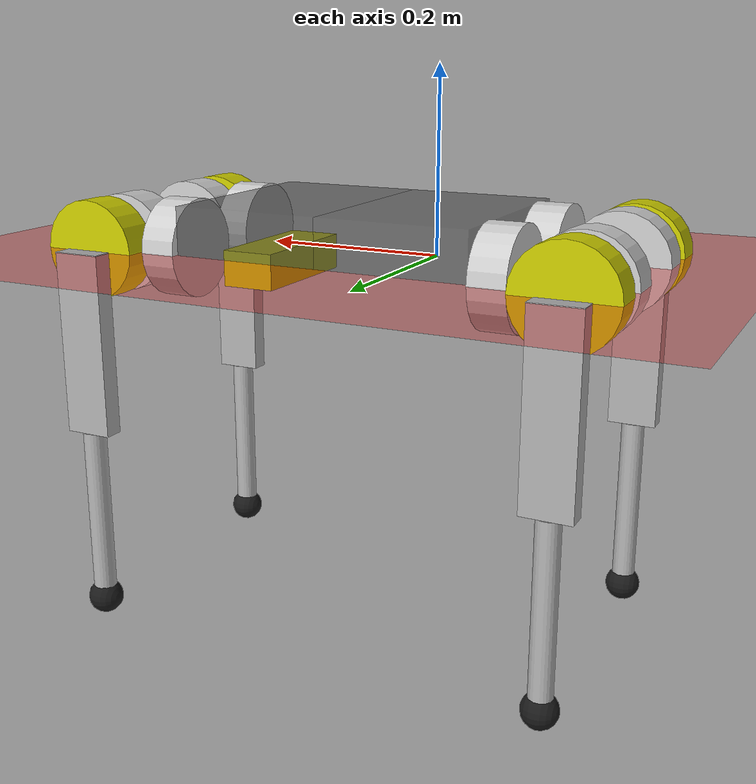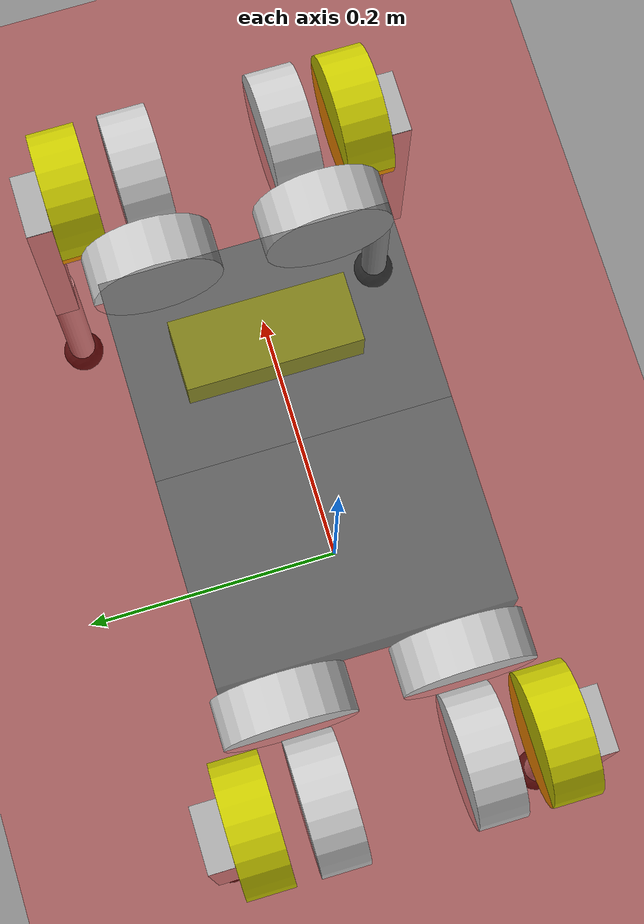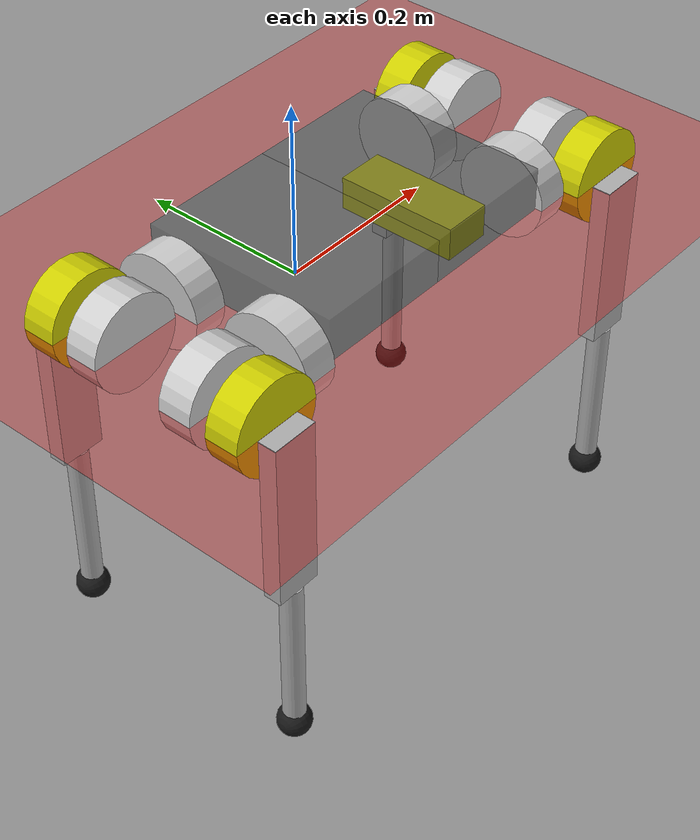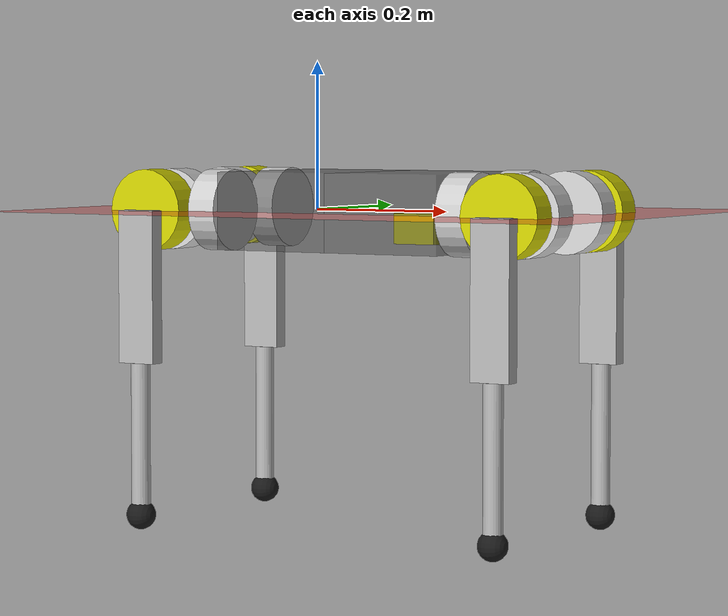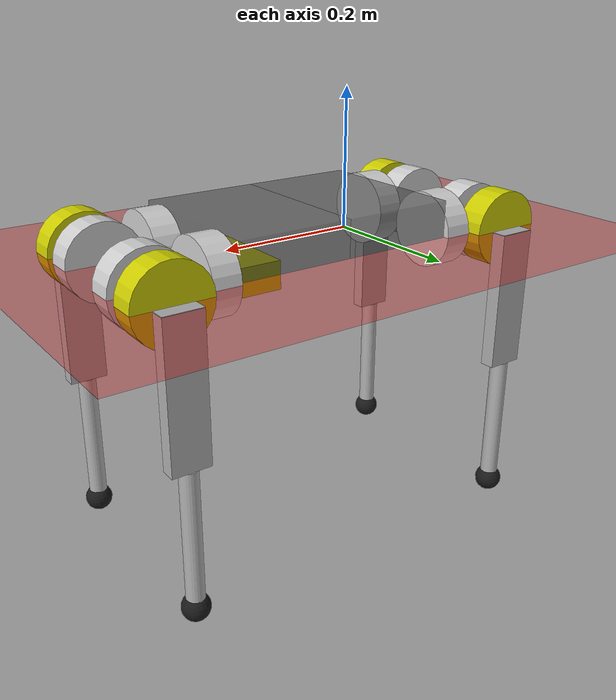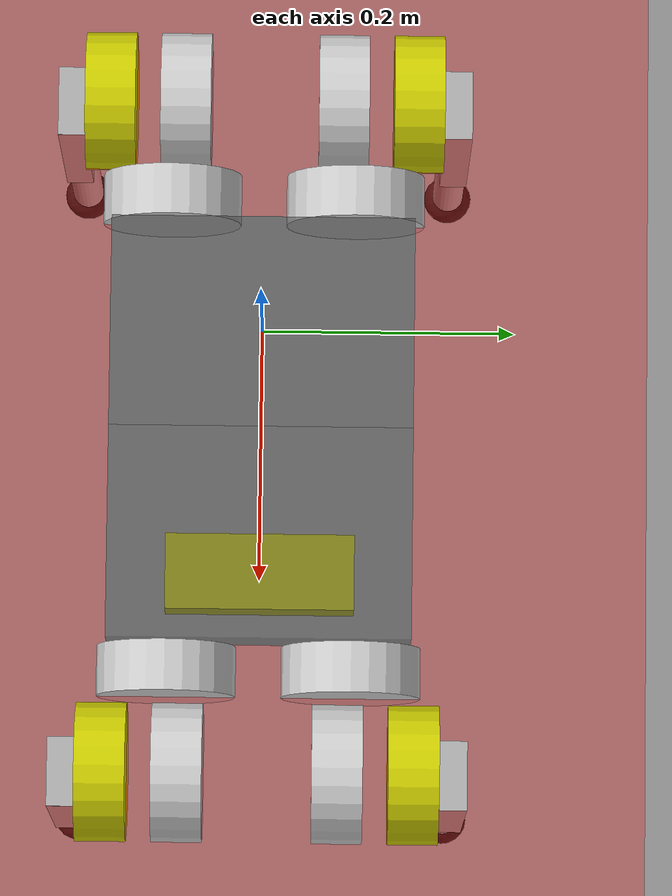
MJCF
<mujoco model="spirit">
  <compiler angle="radian" autolimits="true"/>

  <option timestep="0.001" integrator="Euler" gravity="0 0 -9.81" >
	<!-- https://github.com/deepmind/mujoco/issues/941 -->
		<flag sensornoise="enable" energy="enable" contact="enable" />
	</option>
  <visual>
		<headlight ambient="0.3 0.3 0.3" />
	</visual>
  <worldbody>
    <geom type="plane" size="1 1 0.1" rgba="0.9 0 0 1" pos="0 0 0" contype="4" conaffinity="8"/>
    <body name="ROBOT BODY" >
			<joint name="z" type="slide"  axis="0 0 1" />
      <joint name="x" type="hinge" pos="0 0 0"  axis="1 0 0" />
      <!-- solimplimit=".95 .99 1e-3" tightening joint limits -->
      <geom size="0.08375 0.12 0.052" type="box" contype="0" conaffinity="0" group="1" density="1000" rgba="0.25 0.25 0.25 0.5"/>

      <geom size="0.055 0.02" pos="-0.1055 0.073 0" quat="0.707107 0 0.707107 0" type="cylinder" contype="0" conaffinity="0" group="1" density="1000" rgba="0.8 0.8 0.8 1"/>
      <geom size="0.055 0.02" pos="-0.1055 -0.073 0" quat="0.707107 0 0.707107 0" type="cylinder" contype="0" conaffinity="0" group="1" density="1000" rgba="0.8 0.8 0.8 1"/>

      <body name="front_body">
        <joint name="spine" axis="1 0 0" range="-2.54 2.54"/>
        <geom size="0.08375 0.12 0.052" pos="0.1675 0 0" type="box" contype="0" conaffinity="0" group="1" density="1000" rgba="0.25 0.25 0.25 0.5"/>
        <geom size="0.03 0.075 0.02" pos="0.1925 0 -0.02" type="box" contype="0" conaffinity="0" group="1" density="1000" rgba="0.8 0.8 0 1"/>
        <geom size="0.055 0.02" pos="0.273 0.073 0" quat="0.707107 0 0.707107 0" type="cylinder" contype="0" conaffinity="0" group="1" density="1000" rgba="0.8 0.8 0.8 1"/>
        <geom size="0.055 0.02" pos="0.273 -0.073 0" quat="0.707107 0 0.707107 0" type="cylinder" contype="0" conaffinity="0" group="1" density="1000" rgba="0.8 0.8 0.8 1"/>

        <body name="hip0" pos="0.353 0.095 0">
        <inertial pos="0 -0.03 0" quat="0.5 0.5 -0.5 0.5" mass="1.15" diaginertia="0.00277437 0.00237427 0.00133927"/>
        <joint name="joint_8" pos="0 0 0" axis="1 0 0" range="-1.2 1.2"/>
        <geom size="0.055 0.02" pos="0 0.028 0" quat="0.707107 0.707107 0 0" type="cylinder" contype="0" conaffinity="0" group="1" density="0" rgba="0.8 0.8 0 1"/>
        <geom size="0.055 0.02" pos="0 0.028 0" quat="0.707107 0.707107 0 0" type="cylinder" rgba="0.8 0.8 0 1"/>
        <geom size="0.055 0.02" pos="0 -0.032 0" quat="0.707107 0.707107 0 0" type="cylinder" contype="0" conaffinity="0" group="1" density="0" rgba="0.8 0.8 0.8 1"/>
        <geom size="0.055 0.02" pos="0 -0.032 0" quat="0.707107 0.707107 0 0" type="cylinder" rgba="0.8 0.8 0.8 1"/>
        <body name="upper0" pos="0 0.06 0" euler="0 -1.57 0">
          <inertial pos="0 0 0" quat="0.5 0.5 0.5 0.5" mass="0.775" diaginertia="0.001 0.001 5e-05"/>
          <joint name="joint_0" pos="0 0 0" axis="0 1 0" range="-3.1415926 3.1415926" solimplimit=".95 .99 1e-3"/>
          <geom size="0.103 0.011 0.0275" pos="-0.103 0 0" type="box" contype="0" conaffinity="0" group="1" density="0" rgba="0.68 0.68 0.68 1"/>
          <geom size="0.103 0.011 0.0275" pos="-0.103 0 0" type="box" rgba="0.68 0.68 0.68 1"/>
          <body name="lower0" pos="-0.206 0 0" >
            <inertial pos="0.0343333 0 0" quat="0.5 0.5 0.5 0.5" mass="0.09" diaginertia="0.00087545 0.00056395 0.000345"/>
            <joint name="joint_1" pos="0 0 0" axis="0 1 0" range="-2.9 2.9" solimplimit=".95 .99 1e-3"/>
            <geom size="0.013 0.103" pos="-0.103 0 0" quat="0.707107 0 0.707107 0" type="cylinder" contype="1" conaffinity="0" group="1" density="0" rgba="0.68 0.68 0.68 1"/>
            <geom size="0.013 0.103" pos="-0.103 0 0" quat="0.707107 0 0.707107 0" type="cylinder" rgba="0.68 0.68 0.68 1"/>
            <geom size="0.02" pos="-0.206 0 0" condim="1" contype="8" conaffinity="0" group="1" density="0" rgba="0.1 0.1 0.1 1"/>

          </body>
        </body>
      </body>

      <body name="hip2" pos="0.353 -0.095 0">
        <inertial pos="0 0.03 0" quat="0.5 0.5 -0.5 0.5" mass="1.15" diaginertia="0.00277437 0.00237427 0.00133927"/>
        <joint name="joint_10" pos="0 0 0" axis="1 0 0" range="-1.2 1.2"/>
        <geom size="0.055 0.02" pos="0 -0.028 0" quat="0.707107 0.707107 0 0" type="cylinder" contype="0" conaffinity="0" group="1" density="0" rgba="0.8 0.8 0 1"/>
        <geom size="0.055 0.02" pos="0 -0.028 0" quat="0.707107 0.707107 0 0" type="cylinder" rgba="0.8 0.8 0 1"/>
        <geom size="0.055 0.02" pos="0 0.032 0" quat="0.707107 0.707107 0 0" type="cylinder" contype="0" conaffinity="0" group="1" density="0" rgba="0.8 0.8 0.8 1"/>
        <geom size="0.055 0.02" pos="0 0.032 0" quat="0.707107 0.707107 0 0" type="cylinder" rgba="0.8 0.8 0.8 1"/>
        <body name="upper2" pos="0 -0.06 0" euler="0 -1.57 0">
          <inertial pos="0 0 0" quat="0.5 0.5 0.5 0.5" mass="0.775" diaginertia="0.001 0.001 5e-05"/>
          <joint name="joint_4" pos="0 0 0" axis="0 1 0" range="-3.1415926 3.1415926"/>
          <geom size="0.103 0.011 0.0275" pos="-0.103 0 0" type="box" contype="0" conaffinity="0" group="1" density="0" rgba="0.68 0.68 0.68 1"/>
          <geom size="0.103 0.011 0.0275" pos="-0.103 0 0" type="box" rgba="0.68 0.68 0.68 1"/>
          <body name="lower2" pos="-0.206 0 0" >
            <inertial pos="0.0343333 0 0" quat="0.5 0.5 0.5 0.5" mass="0.09" diaginertia="0.00087545 0.00056395 0.000345"/>
            <joint name="joint_5" pos="0 0 0" axis="0 1 0" range="-2.9 2.9" solimplimit=".95 .99 1e-3" />
            <geom size="0.013 0.103" pos="-0.103 0 0" quat="0.707107 0 0.707107 0" type="cylinder" contype="1" conaffinity="0" group="1" density="0" rgba="0.68 0.68 0.68 1"/>
            <geom size="0.013 0.103" pos="-0.103 0 0" quat="0.707107 0 0.707107 0" type="cylinder" rgba="0.68 0.68 0.68 1"/>
            <geom size="0.02" pos="-0.206 0 0"  condim="1" contype="8" conaffinity="0" group="1" density="0" rgba="0.1 0.1 0.1 1"/>
          </body>
        </body>
      </body>
      </body>

      <body name="hip1" pos="-0.1855 0.095 0">
        <inertial pos="0 -0.03 0" quat="0.5 0.5 -0.5 0.5" mass="1.15" diaginertia="0.00277437 0.00237427 0.00133927"/>
        <joint name="joint_9" pos="0 0 0" axis="1 0 0" range="-1.2 1.2"/>
        <geom size="0.055 0.02" pos="0 0.028 0" quat="0.707107 0.707107 0 0" type="cylinder" contype="0" conaffinity="0" group="1" density="0" rgba="0.8 0.8 0 1"/>
        <geom size="0.055 0.02" pos="0 0.028 0" quat="0.707107 0.707107 0 0" type="cylinder" rgba="0.8 0.8 0 1"/>
        <geom size="0.055 0.02" pos="0 -0.032 0" quat="0.707107 0.707107 0 0" type="cylinder" contype="0" conaffinity="0" group="1" density="0" rgba="0.8 0.8 0.8 1"/>
        <geom size="0.055 0.02" pos="0 -0.032 0" quat="0.707107 0.707107 0 0" type="cylinder" rgba="0.8 0.8 0.8 1"/>
        <body name="upper1" pos="0 0.06 0" euler="0 -1.57 0">
          <inertial pos="0 0 0" quat="0.5 0.5 0.5 0.5" mass="0.775" diaginertia="0.001 0.001 5e-05"/>
          <joint name="joint_2" pos="0 0 0" axis="0 1 0" range="-3.1415926 3.1415926"/>
          <geom size="0.103 0.011 0.0275" pos="-0.103 0 0" type="box" contype="0" conaffinity="0" group="1" density="0" rgba="0.68 0.68 0.68 1"/>
          <geom size="0.103 0.011 0.0275" pos="-0.103 0 0" type="box" rgba="0.68 0.68 0.68 1"/>
          <body name="lower1" pos="-0.206 0 0" euler="0 0 0">
            <inertial pos="0.0343333 0 0" quat="0.5 0.5 0.5 0.5" mass="0.09" diaginertia="0.00087545 0.00056395 0.000345"/>
            <joint name="joint_3" pos="0 0 0" axis="0 1 0" range="-2.9 2.9" solimplimit=".95 .99 1e-3"/>
            <geom size="0.013 0.103" pos="-0.103 0 0" quat="0.707107 0 0.707107 0" type="cylinder" contype="1" conaffinity="0" group="1" density="0" rgba="0.68 0.68 0.68 1"/>
            <geom size="0.013 0.103" pos="-0.103 0 0" quat="0.707107 0 0.707107 0" type="cylinder" rgba="0.68 0.68 0.68 1"/>
            <geom size="0.02" pos="-0.206 0 0"  condim="1" contype="8" conaffinity="0" group="1" density="0" rgba="0.1 0.1 0.1 1"/>
          </body>
        </body>
      </body>

      <body name="hip3" pos="-0.1855 -0.095 0">
        <inertial pos="0 0.03 0" quat="0.5 0.5 -0.5 0.5" mass="1.15" diaginertia="0.00277437 0.00237427 0.00133927"/>
        <joint name="joint_11" pos="0 0 0" axis="1 0 0" range="-1.2 1.2"/>
        <geom size="0.055 0.02" pos="0 -0.028 0" quat="0.707107 0.707107 0 0" type="cylinder" contype="0" conaffinity="0" group="1" density="0" rgba="0.8 0.8 0 1"/>
        <geom size="0.055 0.02" pos="0 -0.028 0" quat="0.707107 0.707107 0 0" type="cylinder" rgba="0.8 0.8 0 1"/>
        <geom size="0.055 0.02" pos="0 0.032 0" quat="0.707107 0.707107 0 0" type="cylinder" contype="0" conaffinity="0" group="1" density="0" rgba="0.8 0.8 0.8 1"/>
        <geom size="0.055 0.02" pos="0 0.032 0" quat="0.707107 0.707107 0 0" type="cylinder" rgba="0.8 0.8 0.8 1"/>
        <body name="upper3" pos="0 -0.06 0" euler="0 -1.57 0">
          <inertial pos="0 0 0" quat="0.5 0.5 0.5 0.5" mass="0.775" diaginertia="0.001 0.001 5e-05"/>
          <joint name="joint_6" pos="0 0 0" axis="0 1 0" range="-3.1415926 3.1415926"/>
          <geom size="0.103 0.011 0.0275" pos="-0.103 0 0" type="box" contype="0" conaffinity="0" group="1" density="0" rgba="0.68 0.68 0.68 1"/>
          <geom size="0.103 0.011 0.0275" pos="-0.103 0 0" type="box" rgba="0.68 0.68 0.68 1"/>
          <body name="lower3" pos="-0.206 0 0" euler="0 0 0">
            <inertial pos="0.0343333 0 0" quat="0.5 0.5 0.5 0.5" mass="0.09" diaginertia="0.00087545 0.00056395 0.000345"/>
            <joint name="joint_7" pos="0 0 0" axis="0 1 0" range="-2.9 2.9" solimplimit=".95 .99 1e-3"/>
            <geom size="0.013 0.103" pos="-0.103 0 0" quat="0.707107 0 0.707107 0" type="cylinder" contype="1" conaffinity="0" group="1" density="0" rgba="0.68 0.68 0.68 1"/>
            <geom size="0.013 0.103" pos="-0.103 0 0" quat="0.707107 0 0.707107 0" type="cylinder" rgba="0.68 0.68 0.68 1"/>
            <geom size="0.02" pos="-0.206 0 0"  condim="1" contype="8" conaffinity="0" group="1" density="0" rgba="0.1 0.1 0.1 1"/>
          </body>
        </body>
      </body>
    </body>
  </worldbody>

  <equality>
    <joint joint1="x" joint2="spine" polycoef="0 -0.5 0 0 0"></joint>
  </equality>

  <actuator>
		<motor joint="spine" name="Spine Torque"/>

		<motor joint="joint_8" name="FL Abductor"/>
    <motor joint="joint_1" name="FL Lower"/>
    <motor joint="joint_0" name="FL Upper"/>

    <motor joint="joint_9" name="RL Abductor"/>
    <motor joint="joint_3" name="RL Lower"/>
    <motor joint="joint_2" name="RL Upper"/>

    <motor joint="joint_10" name="FR Abductor"/>
    <motor joint="joint_5" name="FR Lower"/>
    <motor joint="joint_4" name="FR Upper"/>

    <motor joint="joint_11" name="RR Abductor"/>
    <motor joint="joint_7" name="RR Lower"/>
    <motor joint="joint_6" name="RR Upper"/>

	</actuator>

</mujoco>
